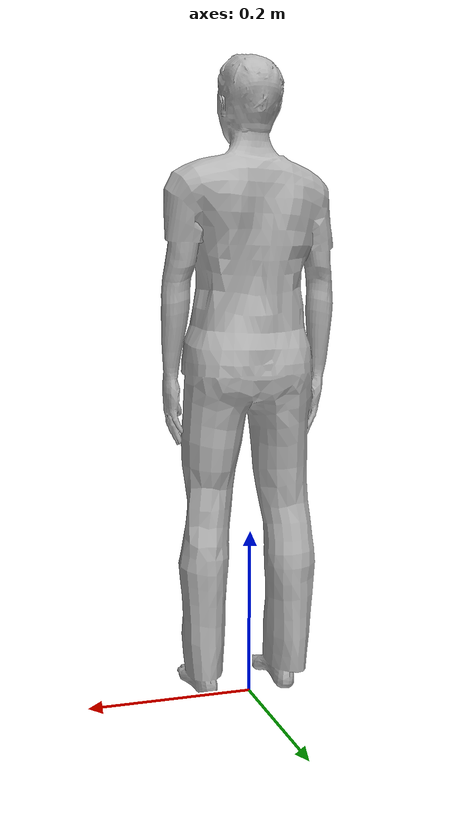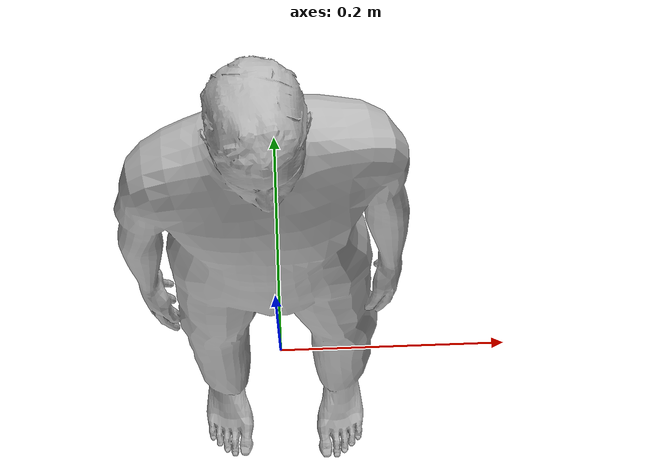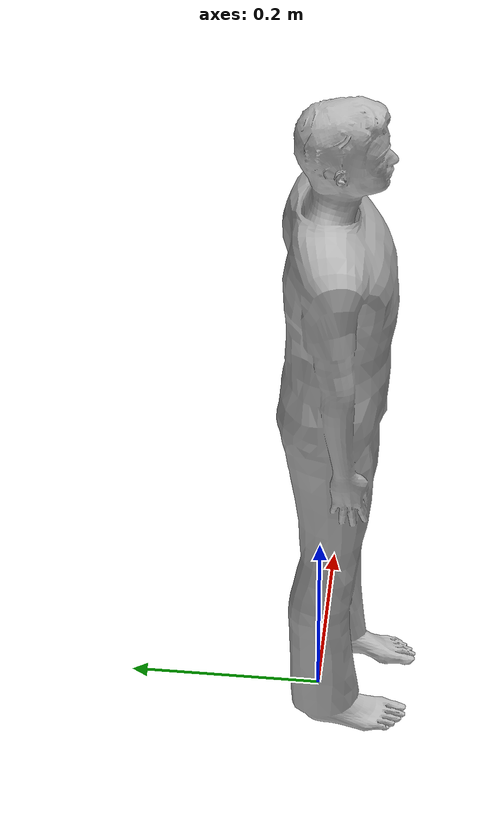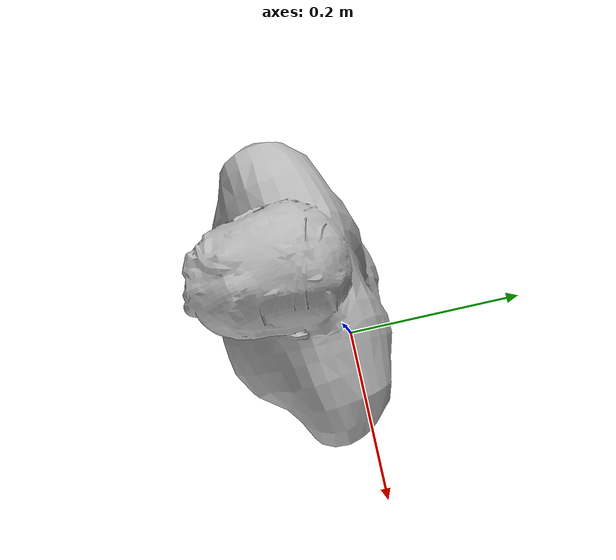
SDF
<?xml version="1.0" ?>
<sdf version="1.5">
  <model name="small_human_static">
    <static>true</static>
    <pose>0 0 0 0 0 0</pose>
    <link name="link">
      <collision name="collision">
        <geometry>
          <box>
            <size>0.2 0.2 0.6</size>
          </box>
        </geometry>
      </collision>
      <visual name="visual">
        <geometry>
          <mesh>
            <uri>model://person_standing/meshes/standing.dae</uri>
            <scale>0.4 0.4 0.4</scale>
          </mesh>
        </geometry>
      </visual>
    </link>
  </model>
</sdf>
